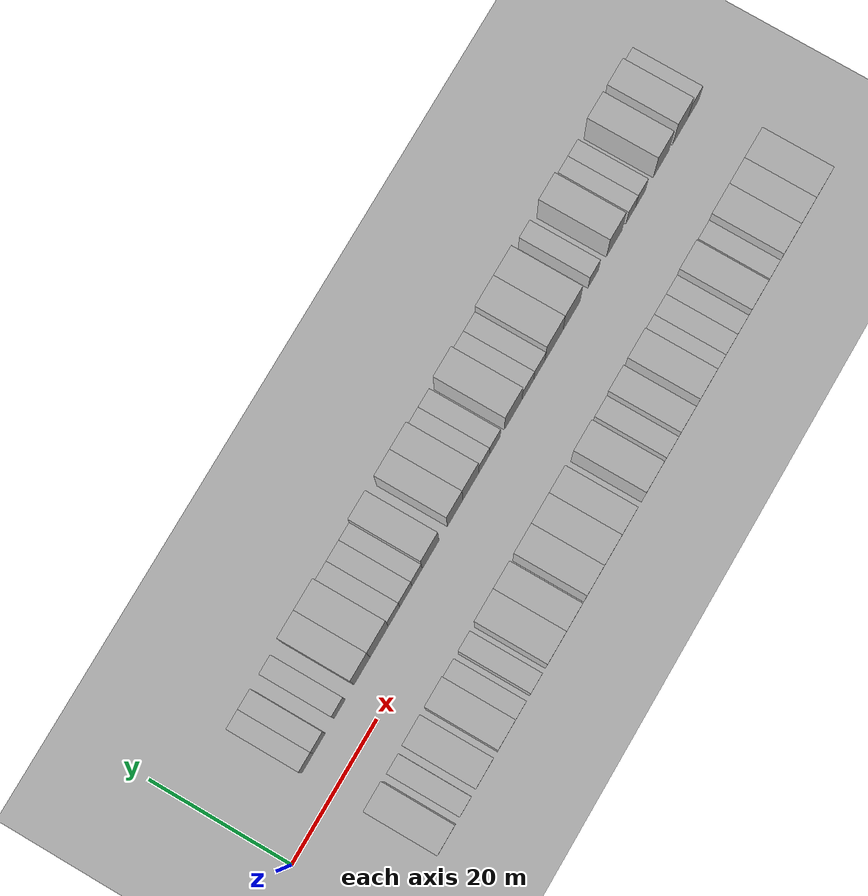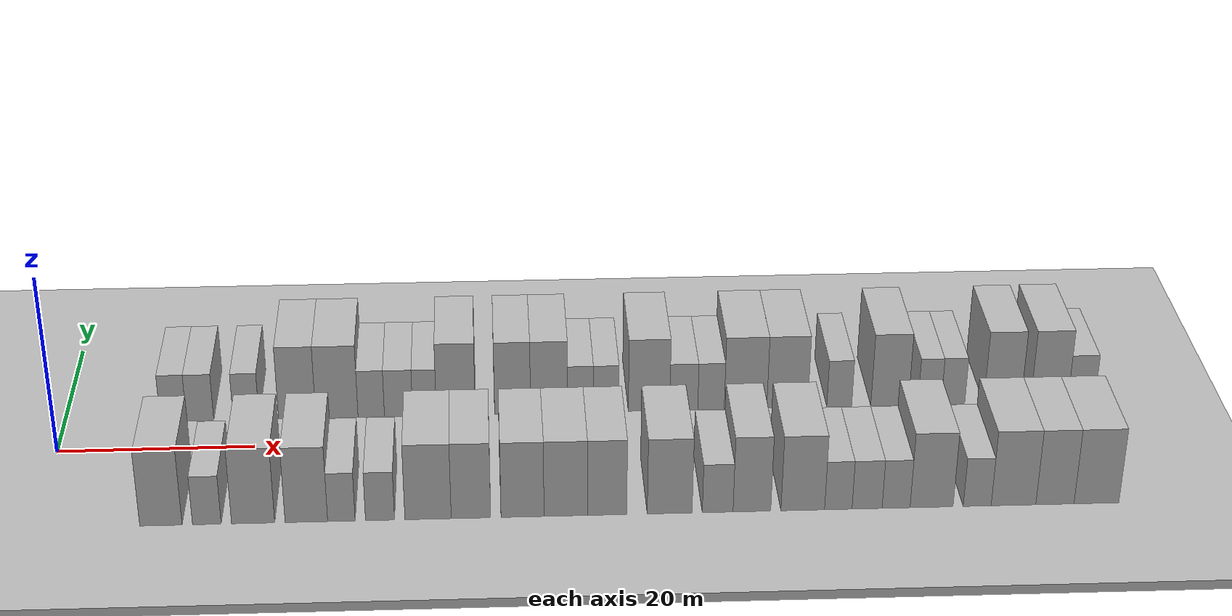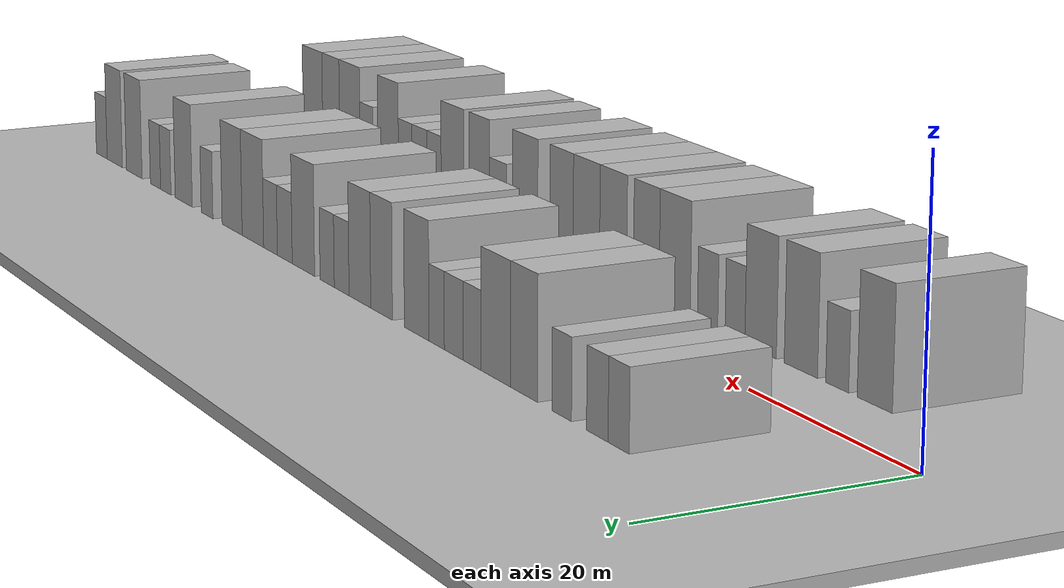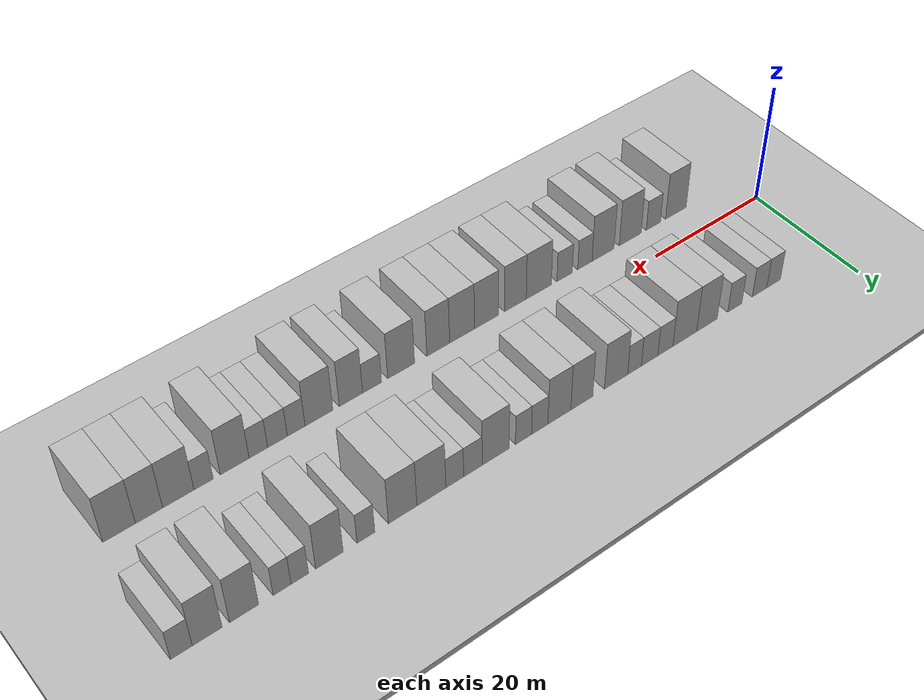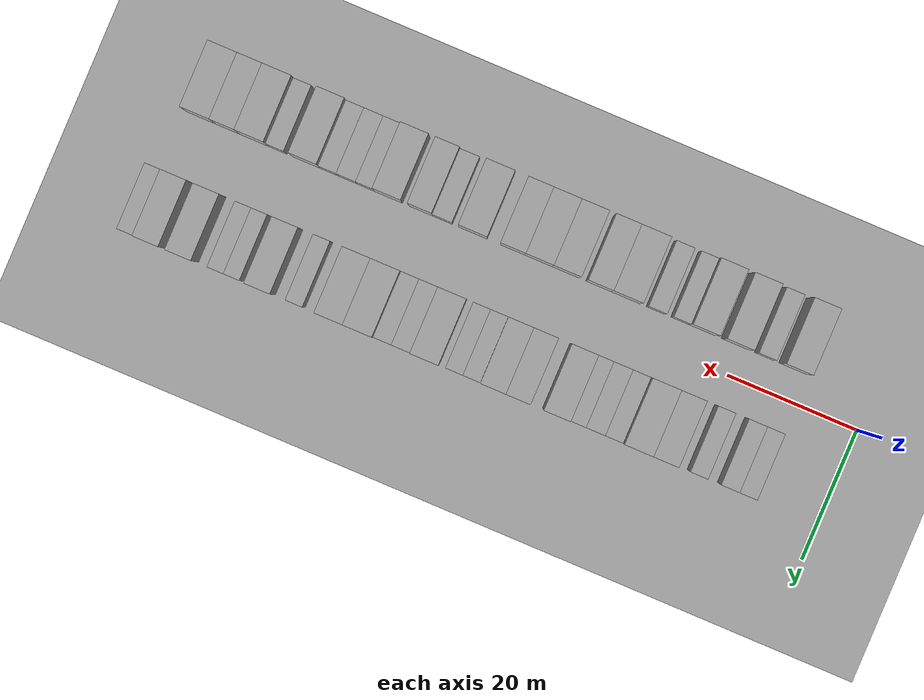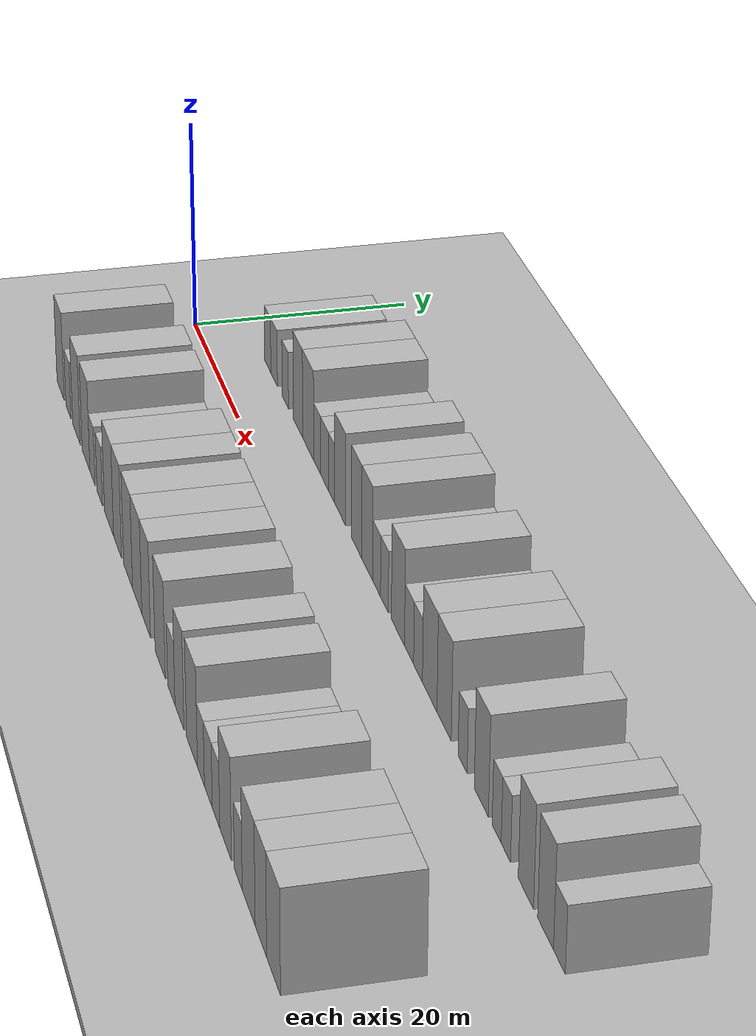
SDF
<sdf version="1.6">
 <world name="default">
  <include><name>ground_plane_1</name><uri>model://HANNAS_ground_plane</uri></include>
  <include>
   <name>ground_plane_2</name>
   <uri>model://HANNAS_ground_plane</uri>
   <pose>100 0 0  0 0 0</pose>
  </include>
  <model name="building_1">
   <static>1</static>
   <pose>11.3415 9.5000 0 0.000000 0.000000 1.570796</pose>
   <link name="link">
    <pose>0 0 3.00 0 0 0</pose>
    <collision name="collision"><geometry><box><size>10.0000 2.6829 6.0000</size></box></geometry></collision>
    <visual name="visual">
     <cast_shadows>0</cast_shadows>
     <geometry><box><size>10.0000 2.6829 6.0000</size></box></geometry>
     <material>
      <script>
       <uri>model://HANNAS_wall/materials/scripts</uri>
       <uri>model://HANNAS_wall/materials/textures</uri>
       <name>vrc/HANNAS_wall</name>
      </script>
     </material>
    </visual>
   </link>
  </model>
  <model name="building_2">
   <static>1</static>
   <pose>14.0803 9.5000 0 0.000000 0.000000 1.570796</pose>
   <link name="link">
    <pose>0 0 3.00 0 0 0</pose>
    <collision name="collision"><geometry><box><size>10.0000 2.7948 6.0000</size></box></geometry></collision>
    <visual name="visual">
     <cast_shadows>0</cast_shadows>
     <geometry><box><size>10.0000 2.7948 6.0000</size></box></geometry>
     <material>
      <script>
       <uri>model://HANNAS_wall/materials/scripts</uri>
       <uri>model://HANNAS_wall/materials/textures</uri>
       <name>vrc/HANNAS_wall</name>
      </script>
     </material>
    </visual>
   </link>
  </model>
  <model name="building_3">
   <static>1</static>
   <pose>18.8091 9.5000 0 0.000000 0.000000 1.570796</pose>
   <link name="link">
    <pose>0 0 3.00 0 0 0</pose>
    <collision name="collision"><geometry><box><size>10.0000 2.6627 6.0000</size></box></geometry></collision>
    <visual name="visual">
     <cast_shadows>0</cast_shadows>
     <geometry><box><size>10.0000 2.6627 6.0000</size></box></geometry>
     <material>
      <script>
       <uri>model://HANNAS_wall/materials/scripts</uri>
       <uri>model://HANNAS_wall/materials/textures</uri>
       <name>vrc/HANNAS_wall</name>
      </script>
     </material>
    </visual>
   </link>
  </model>
  <model name="building_4">
   <static>1</static>
   <pose>24.0546 9.5000 0 0.000000 0.000000 1.570796</pose>
   <link name="link">
    <pose>0 0 4.50 0 0 0</pose>
    <collision name="collision"><geometry><box><size>10.0000 3.8284 9.0000</size></box></geometry></collision>
    <visual name="visual">
     <cast_shadows>0</cast_shadows>
     <geometry><box><size>10.0000 3.8284 9.0000</size></box></geometry>
     <material>
      <script>
       <uri>model://HANNAS_wall/materials/scripts</uri>
       <uri>model://HANNAS_wall/materials/textures</uri>
       <name>vrc/HANNAS_wall</name>
      </script>
     </material>
    </visual>
   </link>
  </model>
  <model name="building_5">
   <static>1</static>
   <pose>28.1454 9.5000 0 0.000000 0.000000 1.570796</pose>
   <link name="link">
    <pose>0 0 4.50 0 0 0</pose>
    <collision name="collision"><geometry><box><size>10.0000 4.3533 9.0000</size></box></geometry></collision>
    <visual name="visual">
     <cast_shadows>0</cast_shadows>
     <geometry><box><size>10.0000 4.3533 9.0000</size></box></geometry>
     <material>
      <script>
       <uri>model://HANNAS_wall/materials/scripts</uri>
       <uri>model://HANNAS_wall/materials/textures</uri>
       <name>vrc/HANNAS_wall</name>
      </script>
     </material>
    </visual>
   </link>
  </model>
  <model name="building_6">
   <static>1</static>
   <pose>31.6854 9.5000 0 0.000000 0.000000 1.570796</pose>
   <link name="link">
    <pose>0 0 3.00 0 0 0</pose>
    <collision name="collision"><geometry><box><size>10.0000 2.7267 6.0000</size></box></geometry></collision>
    <visual name="visual">
     <cast_shadows>0</cast_shadows>
     <geometry><box><size>10.0000 2.7267 6.0000</size></box></geometry>
     <material>
      <script>
       <uri>model://HANNAS_wall/materials/scripts</uri>
       <uri>model://HANNAS_wall/materials/textures</uri>
       <name>vrc/HANNAS_wall</name>
      </script>
     </material>
    </visual>
   </link>
  </model>
  <model name="building_7">
   <static>1</static>
   <pose>34.5057 9.5000 0 0.000000 0.000000 1.570796</pose>
   <link name="link">
    <pose>0 0 3.00 0 0 0</pose>
    <collision name="collision"><geometry><box><size>10.0000 2.9138 6.0000</size></box></geometry></collision>
    <visual name="visual">
     <cast_shadows>0</cast_shadows>
     <geometry><box><size>10.0000 2.9138 6.0000</size></box></geometry>
     <material>
      <script>
       <uri>model://HANNAS_wall/materials/scripts</uri>
       <uri>model://HANNAS_wall/materials/textures</uri>
       <name>vrc/HANNAS_wall</name>
      </script>
     </material>
    </visual>
   </link>
  </model>
  <model name="building_8">
   <static>1</static>
   <pose>37.1857 9.5000 0 0.000000 0.000000 1.570796</pose>
   <link name="link">
    <pose>0 0 3.00 0 0 0</pose>
    <collision name="collision"><geometry><box><size>10.0000 2.4462 6.0000</size></box></geometry></collision>
    <visual name="visual">
     <cast_shadows>0</cast_shadows>
     <geometry><box><size>10.0000 2.4462 6.0000</size></box></geometry>
     <material>
      <script>
       <uri>model://HANNAS_wall/materials/scripts</uri>
       <uri>model://HANNAS_wall/materials/textures</uri>
       <name>vrc/HANNAS_wall</name>
      </script>
     </material>
    </visual>
   </link>
  </model>
  <model name="building_9">
   <static>1</static>
   <pose>40.4200 9.5000 0 0.000000 0.000000 1.570796</pose>
   <link name="link">
    <pose>0 0 4.50 0 0 0</pose>
    <collision name="collision"><geometry><box><size>10.0000 4.0225 9.0000</size></box></geometry></collision>
    <visual name="visual">
     <cast_shadows>0</cast_shadows>
     <geometry><box><size>10.0000 4.0225 9.0000</size></box></geometry>
     <material>
      <script>
       <uri>model://HANNAS_wall/materials/scripts</uri>
       <uri>model://HANNAS_wall/materials/textures</uri>
       <name>vrc/HANNAS_wall</name>
      </script>
     </material>
    </visual>
   </link>
  </model>
  <model name="building_10">
   <static>1</static>
   <pose>46.2877 9.5000 0 0.000000 0.000000 1.570796</pose>
   <link name="link">
    <pose>0 0 4.50 0 0 0</pose>
    <collision name="collision"><geometry><box><size>10.0000 3.7129 9.0000</size></box></geometry></collision>
    <visual name="visual">
     <cast_shadows>0</cast_shadows>
     <geometry><box><size>10.0000 3.7129 9.0000</size></box></geometry>
     <material>
      <script>
       <uri>model://HANNAS_wall/materials/scripts</uri>
       <uri>model://HANNAS_wall/materials/textures</uri>
       <name>vrc/HANNAS_wall</name>
      </script>
     </material>
    </visual>
   </link>
  </model>
  <model name="building_11">
   <static>1</static>
   <pose>50.0635 9.5000 0 0.000000 0.000000 1.570796</pose>
   <link name="link">
    <pose>0 0 4.50 0 0 0</pose>
    <collision name="collision"><geometry><box><size>10.0000 3.8388 9.0000</size></box></geometry></collision>
    <visual name="visual">
     <cast_shadows>0</cast_shadows>
     <geometry><box><size>10.0000 3.8388 9.0000</size></box></geometry>
     <material>
      <script>
       <uri>model://HANNAS_wall/materials/scripts</uri>
       <uri>model://HANNAS_wall/materials/textures</uri>
       <name>vrc/HANNAS_wall</name>
      </script>
     </material>
    </visual>
   </link>
  </model>
  <model name="building_12">
   <static>1</static>
   <pose>53.3202 9.5000 0 0.000000 0.000000 1.570796</pose>
   <link name="link">
    <pose>0 0 3.00 0 0 0</pose>
    <collision name="collision"><geometry><box><size>10.0000 2.6747 6.0000</size></box></geometry></collision>
    <visual name="visual">
     <cast_shadows>0</cast_shadows>
     <geometry><box><size>10.0000 2.6747 6.0000</size></box></geometry>
     <material>
      <script>
       <uri>model://HANNAS_wall/materials/scripts</uri>
       <uri>model://HANNAS_wall/materials/textures</uri>
       <name>vrc/HANNAS_wall</name>
      </script>
     </material>
    </visual>
   </link>
  </model>
  <model name="building_13">
   <static>1</static>
   <pose>55.9779 9.5000 0 0.000000 0.000000 1.570796</pose>
   <link name="link">
    <pose>0 0 3.00 0 0 0</pose>
    <collision name="collision"><geometry><box><size>10.0000 2.6407 6.0000</size></box></geometry></collision>
    <visual name="visual">
     <cast_shadows>0</cast_shadows>
     <geometry><box><size>10.0000 2.6407 6.0000</size></box></geometry>
     <material>
      <script>
       <uri>model://HANNAS_wall/materials/scripts</uri>
       <uri>model://HANNAS_wall/materials/textures</uri>
       <name>vrc/HANNAS_wall</name>
      </script>
     </material>
    </visual>
   </link>
  </model>
  <model name="building_14">
   <static>1</static>
   <pose>60.4485 9.5000 0 0.000000 0.000000 1.570796</pose>
   <link name="link">
    <pose>0 0 4.50 0 0 0</pose>
    <collision name="collision"><geometry><box><size>10.0000 4.3005 9.0000</size></box></geometry></collision>
    <visual name="visual">
     <cast_shadows>0</cast_shadows>
     <geometry><box><size>10.0000 4.3005 9.0000</size></box></geometry>
     <material>
      <script>
       <uri>model://HANNAS_wall/materials/scripts</uri>
       <uri>model://HANNAS_wall/materials/textures</uri>
       <name>vrc/HANNAS_wall</name>
      </script>
     </material>
    </visual>
   </link>
  </model>
  <model name="building_15">
   <static>1</static>
   <pose>64.0582 9.5000 0 0.000000 0.000000 1.570796</pose>
   <link name="link">
    <pose>0 0 3.00 0 0 0</pose>
    <collision name="collision"><geometry><box><size>10.0000 2.9188 6.0000</size></box></geometry></collision>
    <visual name="visual">
     <cast_shadows>0</cast_shadows>
     <geometry><box><size>10.0000 2.9188 6.0000</size></box></geometry>
     <material>
      <script>
       <uri>model://HANNAS_wall/materials/scripts</uri>
       <uri>model://HANNAS_wall/materials/textures</uri>
       <name>vrc/HANNAS_wall</name>
      </script>
     </material>
    </visual>
   </link>
  </model>
  <model name="building_16">
   <static>1</static>
   <pose>66.8969 9.5000 0 0.000000 0.000000 1.570796</pose>
   <link name="link">
    <pose>0 0 3.00 0 0 0</pose>
    <collision name="collision"><geometry><box><size>10.0000 2.7586 6.0000</size></box></geometry></collision>
    <visual name="visual">
     <cast_shadows>0</cast_shadows>
     <geometry><box><size>10.0000 2.7586 6.0000</size></box></geometry>
     <material>
      <script>
       <uri>model://HANNAS_wall/materials/scripts</uri>
       <uri>model://HANNAS_wall/materials/textures</uri>
       <name>vrc/HANNAS_wall</name>
      </script>
     </material>
    </visual>
   </link>
  </model>
  <model name="building_17">
   <static>1</static>
   <pose>70.4968 9.5000 0 0.000000 0.000000 1.570796</pose>
   <link name="link">
    <pose>0 0 4.50 0 0 0</pose>
    <collision name="collision"><geometry><box><size>10.0000 4.4412 9.0000</size></box></geometry></collision>
    <visual name="visual">
     <cast_shadows>0</cast_shadows>
     <geometry><box><size>10.0000 4.4412 9.0000</size></box></geometry>
     <material>
      <script>
       <uri>model://HANNAS_wall/materials/scripts</uri>
       <uri>model://HANNAS_wall/materials/textures</uri>
       <name>vrc/HANNAS_wall</name>
      </script>
     </material>
    </visual>
   </link>
  </model>
  <model name="building_18">
   <static>1</static>
   <pose>74.8519 9.5000 0 0.000000 0.000000 1.570796</pose>
   <link name="link">
    <pose>0 0 4.50 0 0 0</pose>
    <collision name="collision"><geometry><box><size>10.0000 4.2689 9.0000</size></box></geometry></collision>
    <visual name="visual">
     <cast_shadows>0</cast_shadows>
     <geometry><box><size>10.0000 4.2689 9.0000</size></box></geometry>
     <material>
      <script>
       <uri>model://HANNAS_wall/materials/scripts</uri>
       <uri>model://HANNAS_wall/materials/textures</uri>
       <name>vrc/HANNAS_wall</name>
      </script>
     </material>
    </visual>
   </link>
  </model>
  <model name="building_19">
   <static>1</static>
   <pose>80.2871 9.5000 0 0.000000 0.000000 1.570796</pose>
   <link name="link">
    <pose>0 0 3.00 0 0 0</pose>
    <collision name="collision"><geometry><box><size>10.0000 2.6015 6.0000</size></box></geometry></collision>
    <visual name="visual">
     <cast_shadows>0</cast_shadows>
     <geometry><box><size>10.0000 2.6015 6.0000</size></box></geometry>
     <material>
      <script>
       <uri>model://HANNAS_wall/materials/scripts</uri>
       <uri>model://HANNAS_wall/materials/textures</uri>
       <name>vrc/HANNAS_wall</name>
      </script>
     </material>
    </visual>
   </link>
  </model>
  <model name="building_20">
   <static>1</static>
   <pose>85.5526 9.5000 0 0.000000 0.000000 1.570796</pose>
   <link name="link">
    <pose>0 0 4.50 0 0 0</pose>
    <collision name="collision"><geometry><box><size>10.0000 3.9295 9.0000</size></box></geometry></collision>
    <visual name="visual">
     <cast_shadows>0</cast_shadows>
     <geometry><box><size>10.0000 3.9295 9.0000</size></box></geometry>
     <material>
      <script>
       <uri>model://HANNAS_wall/materials/scripts</uri>
       <uri>model://HANNAS_wall/materials/textures</uri>
       <name>vrc/HANNAS_wall</name>
      </script>
     </material>
    </visual>
   </link>
  </model>
  <model name="building_21">
   <static>1</static>
   <pose>89.7379 9.5000 0 0.000000 0.000000 1.570796</pose>
   <link name="link">
    <pose>0 0 3.00 0 0 0</pose>
    <collision name="collision"><geometry><box><size>10.0000 2.4410 6.0000</size></box></geometry></collision>
    <visual name="visual">
     <cast_shadows>0</cast_shadows>
     <geometry><box><size>10.0000 2.4410 6.0000</size></box></geometry>
     <material>
      <script>
       <uri>model://HANNAS_wall/materials/scripts</uri>
       <uri>model://HANNAS_wall/materials/textures</uri>
       <name>vrc/HANNAS_wall</name>
      </script>
     </material>
    </visual>
   </link>
  </model>
  <model name="building_22">
   <static>1</static>
   <pose>92.1954 9.5000 0 0.000000 0.000000 1.570796</pose>
   <link name="link">
    <pose>0 0 3.00 0 0 0</pose>
    <collision name="collision"><geometry><box><size>10.0000 2.4740 6.0000</size></box></geometry></collision>
    <visual name="visual">
     <cast_shadows>0</cast_shadows>
     <geometry><box><size>10.0000 2.4740 6.0000</size></box></geometry>
     <material>
      <script>
       <uri>model://HANNAS_wall/materials/scripts</uri>
       <uri>model://HANNAS_wall/materials/textures</uri>
       <name>vrc/HANNAS_wall</name>
      </script>
     </material>
    </visual>
   </link>
  </model>
  <model name="building_23">
   <static>1</static>
   <pose>97.3916 9.5000 0 0.000000 0.000000 1.570796</pose>
   <link name="link">
    <pose>0 0 4.50 0 0 0</pose>
    <collision name="collision"><geometry><box><size>10.0000 3.9183 9.0000</size></box></geometry></collision>
    <visual name="visual">
     <cast_shadows>0</cast_shadows>
     <geometry><box><size>10.0000 3.9183 9.0000</size></box></geometry>
     <material>
      <script>
       <uri>model://HANNAS_wall/materials/scripts</uri>
       <uri>model://HANNAS_wall/materials/textures</uri>
       <name>vrc/HANNAS_wall</name>
      </script>
     </material>
    </visual>
   </link>
  </model>
  <model name="building_24">
   <static>1</static>
   <pose>102.3076 9.5000 0 0.000000 0.000000 1.570796</pose>
   <link name="link">
    <pose>0 0 4.50 0 0 0</pose>
    <collision name="collision"><geometry><box><size>10.0000 3.9137 9.0000</size></box></geometry></collision>
    <visual name="visual">
     <cast_shadows>0</cast_shadows>
     <geometry><box><size>10.0000 3.9137 9.0000</size></box></geometry>
     <material>
      <script>
       <uri>model://HANNAS_wall/materials/scripts</uri>
       <uri>model://HANNAS_wall/materials/textures</uri>
       <name>vrc/HANNAS_wall</name>
      </script>
     </material>
    </visual>
   </link>
  </model>
  <model name="building_25">
   <static>1</static>
   <pose>105.6866 9.5000 0 0.000000 0.000000 1.570796</pose>
   <link name="link">
    <pose>0 0 3.00 0 0 0</pose>
    <collision name="collision"><geometry><box><size>10.0000 2.8443 6.0000</size></box></geometry></collision>
    <visual name="visual">
     <cast_shadows>0</cast_shadows>
     <geometry><box><size>10.0000 2.8443 6.0000</size></box></geometry>
     <material>
      <script>
       <uri>model://HANNAS_wall/materials/scripts</uri>
       <uri>model://HANNAS_wall/materials/textures</uri>
       <name>vrc/HANNAS_wall</name>
      </script>
     </material>
    </visual>
   </link>
  </model>
  <model name="building_49">
   <static>1</static>
   <pose>12.0303 -9.5000 0 0.000000 0.000000 1.570796</pose>
   <link name="link">
    <pose>0 0 4.50 0 0 0</pose>
    <collision name="collision"><geometry><box><size>10.0000 4.0607 9.0000</size></box></geometry></collision>
    <visual name="visual">
     <cast_shadows>0</cast_shadows>
     <geometry><box><size>10.0000 4.0607 9.0000</size></box></geometry>
     <material>
      <script>
       <uri>model://HANNAS_wall/materials/scripts</uri>
       <uri>model://HANNAS_wall/materials/textures</uri>
       <name>vrc/HANNAS_wall</name>
      </script>
     </material>
    </visual>
   </link>
  </model>
  <model name="building_50">
   <static>1</static>
   <pose>16.4370 -9.5000 0 0.000000 0.000000 1.570796</pose>
   <link name="link">
    <pose>0 0 3.00 0 0 0</pose>
    <collision name="collision"><geometry><box><size>10.0000 2.7527 6.0000</size></box></geometry></collision>
    <visual name="visual">
     <cast_shadows>0</cast_shadows>
     <geometry><box><size>10.0000 2.7527 6.0000</size></box></geometry>
     <material>
      <script>
       <uri>model://HANNAS_wall/materials/scripts</uri>
       <uri>model://HANNAS_wall/materials/textures</uri>
       <name>vrc/HANNAS_wall</name>
      </script>
     </material>
    </visual>
   </link>
  </model>
  <model name="building_51">
   <static>1</static>
   <pose>20.8872 -9.5000 0 0.000000 0.000000 1.570796</pose>
   <link name="link">
    <pose>0 0 4.50 0 0 0</pose>
    <collision name="collision"><geometry><box><size>10.0000 4.1477 9.0000</size></box></geometry></collision>
    <visual name="visual">
     <cast_shadows>0</cast_shadows>
     <geometry><box><size>10.0000 4.1477 9.0000</size></box></geometry>
     <material>
      <script>
       <uri>model://HANNAS_wall/materials/scripts</uri>
       <uri>model://HANNAS_wall/materials/textures</uri>
       <name>vrc/HANNAS_wall</name>
      </script>
     </material>
    </visual>
   </link>
  </model>
  <model name="building_52">
   <static>1</static>
   <pose>26.0110 -9.5000 0 0.000000 0.000000 1.570796</pose>
   <link name="link">
    <pose>0 0 4.50 0 0 0</pose>
    <collision name="collision"><geometry><box><size>10.0000 4.0998 9.0000</size></box></geometry></collision>
    <visual name="visual">
     <cast_shadows>0</cast_shadows>
     <geometry><box><size>10.0000 4.0998 9.0000</size></box></geometry>
     <material>
      <script>
       <uri>model://HANNAS_wall/materials/scripts</uri>
       <uri>model://HANNAS_wall/materials/textures</uri>
       <name>vrc/HANNAS_wall</name>
      </script>
     </material>
    </visual>
   </link>
  </model>
  <model name="building_53">
   <static>1</static>
   <pose>29.3863 -9.5000 0 0.000000 0.000000 1.570796</pose>
   <link name="link">
    <pose>0 0 3.00 0 0 0</pose>
    <collision name="collision"><geometry><box><size>10.0000 2.6509 6.0000</size></box></geometry></collision>
    <visual name="visual">
     <cast_shadows>0</cast_shadows>
     <geometry><box><size>10.0000 2.6509 6.0000</size></box></geometry>
     <material>
      <script>
       <uri>model://HANNAS_wall/materials/scripts</uri>
       <uri>model://HANNAS_wall/materials/textures</uri>
       <name>vrc/HANNAS_wall</name>
      </script>
     </material>
    </visual>
   </link>
  </model>
  <model name="building_54">
   <static>1</static>
   <pose>33.1118 -9.5000 0 0.000000 0.000000 1.570796</pose>
   <link name="link">
    <pose>0 0 3.00 0 0 0</pose>
    <collision name="collision"><geometry><box><size>10.0000 2.8001 6.0000</size></box></geometry></collision>
    <visual name="visual">
     <cast_shadows>0</cast_shadows>
     <geometry><box><size>10.0000 2.8001 6.0000</size></box></geometry>
     <material>
      <script>
       <uri>model://HANNAS_wall/materials/scripts</uri>
       <uri>model://HANNAS_wall/materials/textures</uri>
       <name>vrc/HANNAS_wall</name>
      </script>
     </material>
    </visual>
   </link>
  </model>
  <model name="building_55">
   <static>1</static>
   <pose>37.7510 -9.5000 0 0.000000 0.000000 1.570796</pose>
   <link name="link">
    <pose>0 0 4.50 0 0 0</pose>
    <collision name="collision"><geometry><box><size>10.0000 4.4783 9.0000</size></box></geometry></collision>
    <visual name="visual">
     <cast_shadows>0</cast_shadows>
     <geometry><box><size>10.0000 4.4783 9.0000</size></box></geometry>
     <material>
      <script>
       <uri>model://HANNAS_wall/materials/scripts</uri>
       <uri>model://HANNAS_wall/materials/textures</uri>
       <name>vrc/HANNAS_wall</name>
      </script>
     </material>
    </visual>
   </link>
  </model>
  <model name="building_56">
   <static>1</static>
   <pose>41.8994 -9.5000 0 0.000000 0.000000 1.570796</pose>
   <link name="link">
    <pose>0 0 4.50 0 0 0</pose>
    <collision name="collision"><geometry><box><size>10.0000 3.8186 9.0000</size></box></geometry></collision>
    <visual name="visual">
     <cast_shadows>0</cast_shadows>
     <geometry><box><size>10.0000 3.8186 9.0000</size></box></geometry>
     <material>
      <script>
       <uri>model://HANNAS_wall/materials/scripts</uri>
       <uri>model://HANNAS_wall/materials/textures</uri>
       <name>vrc/HANNAS_wall</name>
      </script>
     </material>
    </visual>
   </link>
  </model>
  <model name="building_57">
   <static>1</static>
   <pose>46.8918 -9.5000 0 0.000000 0.000000 1.570796</pose>
   <link name="link">
    <pose>0 0 4.50 0 0 0</pose>
    <collision name="collision"><geometry><box><size>10.0000 4.1661 9.0000</size></box></geometry></collision>
    <visual name="visual">
     <cast_shadows>0</cast_shadows>
     <geometry><box><size>10.0000 4.1661 9.0000</size></box></geometry>
     <material>
      <script>
       <uri>model://HANNAS_wall/materials/scripts</uri>
       <uri>model://HANNAS_wall/materials/textures</uri>
       <name>vrc/HANNAS_wall</name>
      </script>
     </material>
    </visual>
   </link>
  </model>
  <model name="building_58">
   <static>1</static>
   <pose>51.0810 -9.5000 0 0.000000 0.000000 1.570796</pose>
   <link name="link">
    <pose>0 0 4.50 0 0 0</pose>
    <collision name="collision"><geometry><box><size>10.0000 4.2123 9.0000</size></box></geometry></collision>
    <visual name="visual">
     <cast_shadows>0</cast_shadows>
     <geometry><box><size>10.0000 4.2123 9.0000</size></box></geometry>
     <material>
      <script>
       <uri>model://HANNAS_wall/materials/scripts</uri>
       <uri>model://HANNAS_wall/materials/textures</uri>
       <name>vrc/HANNAS_wall</name>
      </script>
     </material>
    </visual>
   </link>
  </model>
  <model name="building_59">
   <static>1</static>
   <pose>55.0966 -9.5000 0 0.000000 0.000000 1.570796</pose>
   <link name="link">
    <pose>0 0 4.50 0 0 0</pose>
    <collision name="collision"><geometry><box><size>10.0000 3.8189 9.0000</size></box></geometry></collision>
    <visual name="visual">
     <cast_shadows>0</cast_shadows>
     <geometry><box><size>10.0000 3.8189 9.0000</size></box></geometry>
     <material>
      <script>
       <uri>model://HANNAS_wall/materials/scripts</uri>
       <uri>model://HANNAS_wall/materials/textures</uri>
       <name>vrc/HANNAS_wall</name>
      </script>
     </material>
    </visual>
   </link>
  </model>
  <model name="building_60">
   <static>1</static>
   <pose>61.1884 -9.5000 0 0.000000 0.000000 1.570796</pose>
   <link name="link">
    <pose>0 0 4.50 0 0 0</pose>
    <collision name="collision"><geometry><box><size>10.0000 4.3647 9.0000</size></box></geometry></collision>
    <visual name="visual">
     <cast_shadows>0</cast_shadows>
     <geometry><box><size>10.0000 4.3647 9.0000</size></box></geometry>
     <material>
      <script>
       <uri>model://HANNAS_wall/materials/scripts</uri>
       <uri>model://HANNAS_wall/materials/textures</uri>
       <name>vrc/HANNAS_wall</name>
      </script>
     </material>
    </visual>
   </link>
  </model>
  <model name="building_61">
   <static>1</static>
   <pose>65.8668 -9.5000 0 0.000000 0.000000 1.570796</pose>
   <link name="link">
    <pose>0 0 3.00 0 0 0</pose>
    <collision name="collision"><geometry><box><size>10.0000 2.9922 6.0000</size></box></geometry></collision>
    <visual name="visual">
     <cast_shadows>0</cast_shadows>
     <geometry><box><size>10.0000 2.9922 6.0000</size></box></geometry>
     <material>
      <script>
       <uri>model://HANNAS_wall/materials/scripts</uri>
       <uri>model://HANNAS_wall/materials/textures</uri>
       <name>vrc/HANNAS_wall</name>
      </script>
     </material>
    </visual>
   </link>
  </model>
  <model name="building_62">
   <static>1</static>
   <pose>69.2009 -9.5000 0 0.000000 0.000000 1.570796</pose>
   <link name="link">
    <pose>0 0 4.50 0 0 0</pose>
    <collision name="collision"><geometry><box><size>10.0000 3.6760 9.0000</size></box></geometry></collision>
    <visual name="visual">
     <cast_shadows>0</cast_shadows>
     <geometry><box><size>10.0000 3.6760 9.0000</size></box></geometry>
     <material>
      <script>
       <uri>model://HANNAS_wall/materials/scripts</uri>
       <uri>model://HANNAS_wall/materials/textures</uri>
       <name>vrc/HANNAS_wall</name>
      </script>
     </material>
    </visual>
   </link>
  </model>
  <model name="building_63">
   <static>1</static>
   <pose>74.1714 -9.5000 0 0.000000 0.000000 1.570796</pose>
   <link name="link">
    <pose>0 0 4.50 0 0 0</pose>
    <collision name="collision"><geometry><box><size>10.0000 4.2649 9.0000</size></box></geometry></collision>
    <visual name="visual">
     <cast_shadows>0</cast_shadows>
     <geometry><box><size>10.0000 4.2649 9.0000</size></box></geometry>
     <material>
      <script>
       <uri>model://HANNAS_wall/materials/scripts</uri>
       <uri>model://HANNAS_wall/materials/textures</uri>
       <name>vrc/HANNAS_wall</name>
      </script>
     </material>
    </visual>
   </link>
  </model>
  <model name="building_64">
   <static>1</static>
   <pose>77.6474 -9.5000 0 0.000000 0.000000 1.570796</pose>
   <link name="link">
    <pose>0 0 3.00 0 0 0</pose>
    <collision name="collision"><geometry><box><size>10.0000 2.6871 6.0000</size></box></geometry></collision>
    <visual name="visual">
     <cast_shadows>0</cast_shadows>
     <geometry><box><size>10.0000 2.6871 6.0000</size></box></geometry>
     <material>
      <script>
       <uri>model://HANNAS_wall/materials/scripts</uri>
       <uri>model://HANNAS_wall/materials/textures</uri>
       <name>vrc/HANNAS_wall</name>
      </script>
     </material>
    </visual>
   </link>
  </model>
  <model name="building_65">
   <static>1</static>
   <pose>80.4625 -9.5000 0 0.000000 0.000000 1.570796</pose>
   <link name="link">
    <pose>0 0 3.00 0 0 0</pose>
    <collision name="collision"><geometry><box><size>10.0000 2.9432 6.0000</size></box></geometry></collision>
    <visual name="visual">
     <cast_shadows>0</cast_shadows>
     <geometry><box><size>10.0000 2.9432 6.0000</size></box></geometry>
     <material>
      <script>
       <uri>model://HANNAS_wall/materials/scripts</uri>
       <uri>model://HANNAS_wall/materials/textures</uri>
       <name>vrc/HANNAS_wall</name>
      </script>
     </material>
    </visual>
   </link>
  </model>
  <model name="building_66">
   <static>1</static>
   <pose>83.3039 -9.5000 0 0.000000 0.000000 1.570796</pose>
   <link name="link">
    <pose>0 0 3.00 0 0 0</pose>
    <collision name="collision"><geometry><box><size>10.0000 2.7395 6.0000</size></box></geometry></collision>
    <visual name="visual">
     <cast_shadows>0</cast_shadows>
     <geometry><box><size>10.0000 2.7395 6.0000</size></box></geometry>
     <material>
      <script>
       <uri>model://HANNAS_wall/materials/scripts</uri>
       <uri>model://HANNAS_wall/materials/textures</uri>
       <name>vrc/HANNAS_wall</name>
      </script>
     </material>
    </visual>
   </link>
  </model>
  <model name="building_67">
   <static>1</static>
   <pose>86.7822 -9.5000 0 0.000000 0.000000 1.570796</pose>
   <link name="link">
    <pose>0 0 4.50 0 0 0</pose>
    <collision name="collision"><geometry><box><size>10.0000 4.2171 9.0000</size></box></geometry></collision>
    <visual name="visual">
     <cast_shadows>0</cast_shadows>
     <geometry><box><size>10.0000 4.2171 9.0000</size></box></geometry>
     <material>
      <script>
       <uri>model://HANNAS_wall/materials/scripts</uri>
       <uri>model://HANNAS_wall/materials/textures</uri>
       <name>vrc/HANNAS_wall</name>
      </script>
     </material>
    </visual>
   </link>
  </model>
  <model name="building_68">
   <static>1</static>
   <pose>91.2616 -9.5000 0 0.000000 0.000000 1.570796</pose>
   <link name="link">
    <pose>0 0 3.00 0 0 0</pose>
    <collision name="collision"><geometry><box><size>10.0000 2.7416 6.0000</size></box></geometry></collision>
    <visual name="visual">
     <cast_shadows>0</cast_shadows>
     <geometry><box><size>10.0000 2.7416 6.0000</size></box></geometry>
     <material>
      <script>
       <uri>model://HANNAS_wall/materials/scripts</uri>
       <uri>model://HANNAS_wall/materials/textures</uri>
       <name>vrc/HANNAS_wall</name>
      </script>
     </material>
    </visual>
   </link>
  </model>
  <model name="building_69">
   <static>1</static>
   <pose>94.8307 -9.5000 0 0.000000 0.000000 1.570796</pose>
   <link name="link">
    <pose>0 0 4.50 0 0 0</pose>
    <collision name="collision"><geometry><box><size>10.0000 4.3967 9.0000</size></box></geometry></collision>
    <visual name="visual">
     <cast_shadows>0</cast_shadows>
     <geometry><box><size>10.0000 4.3967 9.0000</size></box></geometry>
     <material>
      <script>
       <uri>model://HANNAS_wall/materials/scripts</uri>
       <uri>model://HANNAS_wall/materials/textures</uri>
       <name>vrc/HANNAS_wall</name>
      </script>
     </material>
    </visual>
   </link>
  </model>
  <model name="building_70">
   <static>1</static>
   <pose>98.9095 -9.5000 0 0.000000 0.000000 1.570796</pose>
   <link name="link">
    <pose>0 0 4.50 0 0 0</pose>
    <collision name="collision"><geometry><box><size>10.0000 3.7610 9.0000</size></box></geometry></collision>
    <visual name="visual">
     <cast_shadows>0</cast_shadows>
     <geometry><box><size>10.0000 3.7610 9.0000</size></box></geometry>
     <material>
      <script>
       <uri>model://HANNAS_wall/materials/scripts</uri>
       <uri>model://HANNAS_wall/materials/textures</uri>
       <name>vrc/HANNAS_wall</name>
      </script>
     </material>
    </visual>
   </link>
  </model>
  <model name="building_71">
   <static>1</static>
   <pose>103.0010 -9.5000 0 0.000000 0.000000 1.570796</pose>
   <link name="link">
    <pose>0 0 4.50 0 0 0</pose>
    <collision name="collision"><geometry><box><size>10.0000 4.4219 9.0000</size></box></geometry></collision>
    <visual name="visual">
     <cast_shadows>0</cast_shadows>
     <geometry><box><size>10.0000 4.4219 9.0000</size></box></geometry>
     <material>
      <script>
       <uri>model://HANNAS_wall/materials/scripts</uri>
       <uri>model://HANNAS_wall/materials/textures</uri>
       <name>vrc/HANNAS_wall</name>
      </script>
     </material>
    </visual>
   </link>
  </model>
 </world>
</sdf>
